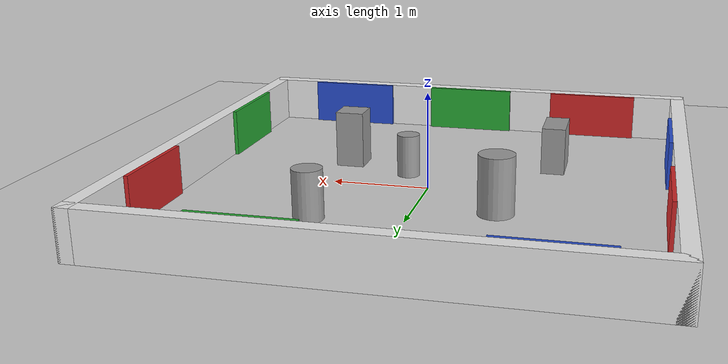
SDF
<?xml version="1.0" ?>
<!-- 자동 생성: generate_world.py — 흰벽 5x5m 방 + RGB 단색 패널 9개 + 무채색 장애물 -->
<sdf version="1.6">
  <world name="color_room">
    <include><uri>model://sun</uri></include>
    <include><uri>model://ground_plane</uri></include>
    <scene>
      <ambient>0.6 0.6 0.6 1</ambient>
      <background>0.8 0.8 0.8 1</background>
      <shadows>false</shadows>
    </scene>
    <physics type="ode">
      <real_time_update_rate>1000</real_time_update_rate>
      <max_step_size>0.001</max_step_size>
    </physics>

    <model name="wall_bottom">
      <static>true</static>
      <pose>0.0 -2.5 0.250 0 0 0</pose>
      <link name="link">
        <collision name="c"><geometry><box><size>5.15 0.15 0.5</size></box></geometry></collision>
        <visual name="v">
          <geometry><box><size>5.15 0.15 0.5</size></box></geometry>
          <material><script><uri>file://media/materials/scripts/gazebo.material</uri><name>Gazebo/White</name></script></material>
        </visual>
      </link>
    </model>

    <model name="wall_top">
      <static>true</static>
      <pose>0.0 2.5 0.250 0 0 0</pose>
      <link name="link">
        <collision name="c"><geometry><box><size>5.15 0.15 0.5</size></box></geometry></collision>
        <visual name="v">
          <geometry><box><size>5.15 0.15 0.5</size></box></geometry>
          <material><script><uri>file://media/materials/scripts/gazebo.material</uri><name>Gazebo/White</name></script></material>
        </visual>
      </link>
    </model>

    <model name="wall_left">
      <static>true</static>
      <pose>-2.5 0.0 0.250 0 0 0</pose>
      <link name="link">
        <collision name="c"><geometry><box><size>0.15 5.15 0.5</size></box></geometry></collision>
        <visual name="v">
          <geometry><box><size>0.15 5.15 0.5</size></box></geometry>
          <material><script><uri>file://media/materials/scripts/gazebo.material</uri><name>Gazebo/White</name></script></material>
        </visual>
      </link>
    </model>

    <model name="wall_right">
      <static>true</static>
      <pose>2.5 0.0 0.250 0 0 0</pose>
      <link name="link">
        <collision name="c"><geometry><box><size>0.15 5.15 0.5</size></box></geometry></collision>
        <visual name="v">
          <geometry><box><size>0.15 5.15 0.5</size></box></geometry>
          <material><script><uri>file://media/materials/scripts/gazebo.material</uri><name>Gazebo/White</name></script></material>
        </visual>
      </link>
    </model>

    <model name="p_red_b">
      <static>true</static>
      <pose>-1.500 -2.405 0.250 0 0 0</pose>
      <link name="link">
        <collision name="c"><geometry><box><size>1.0 0.04 0.5</size></box></geometry></collision>
        <visual name="v">
          <geometry><box><size>1.0 0.04 0.5</size></box></geometry>
          <material><script><uri>file://media/materials/scripts/gazebo.material</uri><name>Gazebo/Red</name></script></material>
        </visual>
      </link>
    </model>

    <model name="p_green_b">
      <static>true</static>
      <pose>0.000 -2.405 0.250 0 0 0</pose>
      <link name="link">
        <collision name="c"><geometry><box><size>1.0 0.04 0.5</size></box></geometry></collision>
        <visual name="v">
          <geometry><box><size>1.0 0.04 0.5</size></box></geometry>
          <material><script><uri>file://media/materials/scripts/gazebo.material</uri><name>Gazebo/Green</name></script></material>
        </visual>
      </link>
    </model>

    <model name="p_blue_b">
      <static>true</static>
      <pose>1.500 -2.405 0.250 0 0 0</pose>
      <link name="link">
        <collision name="c"><geometry><box><size>1.0 0.04 0.5</size></box></geometry></collision>
        <visual name="v">
          <geometry><box><size>1.0 0.04 0.5</size></box></geometry>
          <material><script><uri>file://media/materials/scripts/gazebo.material</uri><name>Gazebo/Blue</name></script></material>
        </visual>
      </link>
    </model>

    <model name="p_green_r">
      <static>true</static>
      <pose>2.405 -1.200 0.250 0 0 0</pose>
      <link name="link">
        <collision name="c"><geometry><box><size>0.04 1.0 0.5</size></box></geometry></collision>
        <visual name="v">
          <geometry><box><size>0.04 1.0 0.5</size></box></geometry>
          <material><script><uri>file://media/materials/scripts/gazebo.material</uri><name>Gazebo/Green</name></script></material>
        </visual>
      </link>
    </model>

    <model name="p_red_r">
      <static>true</static>
      <pose>2.405 1.200 0.250 0 0 0</pose>
      <link name="link">
        <collision name="c"><geometry><box><size>0.04 1.0 0.5</size></box></geometry></collision>
        <visual name="v">
          <geometry><box><size>0.04 1.0 0.5</size></box></geometry>
          <material><script><uri>file://media/materials/scripts/gazebo.material</uri><name>Gazebo/Red</name></script></material>
        </visual>
      </link>
    </model>

    <model name="p_blue_t">
      <static>true</static>
      <pose>-1.500 2.405 0.250 0 0 0</pose>
      <link name="link">
        <collision name="c"><geometry><box><size>1.0 0.04 0.5</size></box></geometry></collision>
        <visual name="v">
          <geometry><box><size>1.0 0.04 0.5</size></box></geometry>
          <material><script><uri>file://media/materials/scripts/gazebo.material</uri><name>Gazebo/Blue</name></script></material>
        </visual>
      </link>
    </model>

    <model name="p_green_t">
      <static>true</static>
      <pose>1.000 2.405 0.250 0 0 0</pose>
      <link name="link">
        <collision name="c"><geometry><box><size>1.0 0.04 0.5</size></box></geometry></collision>
        <visual name="v">
          <geometry><box><size>1.0 0.04 0.5</size></box></geometry>
          <material><script><uri>file://media/materials/scripts/gazebo.material</uri><name>Gazebo/Green</name></script></material>
        </visual>
      </link>
    </model>

    <model name="p_blue_l">
      <static>true</static>
      <pose>-2.405 -1.000 0.250 0 0 0</pose>
      <link name="link">
        <collision name="c"><geometry><box><size>0.04 1.0 0.5</size></box></geometry></collision>
        <visual name="v">
          <geometry><box><size>0.04 1.0 0.5</size></box></geometry>
          <material><script><uri>file://media/materials/scripts/gazebo.material</uri><name>Gazebo/Blue</name></script></material>
        </visual>
      </link>
    </model>

    <model name="p_red_l">
      <static>true</static>
      <pose>-2.405 0.800 0.250 0 0 0</pose>
      <link name="link">
        <collision name="c"><geometry><box><size>0.04 1.0 0.5</size></box></geometry></collision>
        <visual name="v">
          <geometry><box><size>0.04 1.0 0.5</size></box></geometry>
          <material><script><uri>file://media/materials/scripts/gazebo.material</uri><name>Gazebo/Red</name></script></material>
        </visual>
      </link>
    </model>

    <model name="obs_cyl_a">
      <static>true</static>
      <pose>-0.8 0.6 0.300 0 0 0</pose>
      <link name="link">
        <collision name="c"><geometry><cylinder><radius>0.18</radius><length>0.6</length></cylinder></geometry></collision>
        <visual name="v">
          <geometry><cylinder><radius>0.18</radius><length>0.6</length></cylinder></geometry>
          <material><script><uri>file://media/materials/scripts/gazebo.material</uri><name>Gazebo/Grey</name></script></material>
        </visual>
      </link>
    </model>

    <model name="obs_box_a">
      <static>true</static>
      <pose>1.0 -0.7 0.300 0 0 0</pose>
      <link name="link">
        <collision name="c"><geometry><box><size>0.3 0.3 0.6</size></box></geometry></collision>
        <visual name="v">
          <geometry><box><size>0.3 0.3 0.6</size></box></geometry>
          <material><script><uri>file://media/materials/scripts/gazebo.material</uri><name>Gazebo/Grey</name></script></material>
        </visual>
      </link>
    </model>

    <model name="obs_cyl_b">
      <static>true</static>
      <pose>0.9 1.1 0.250 0 0 0</pose>
      <link name="link">
        <collision name="c"><geometry><cylinder><radius>0.15</radius><length>0.5</length></cylinder></geometry></collision>
        <visual name="v">
          <geometry><cylinder><radius>0.15</radius><length>0.5</length></cylinder></geometry>
          <material><script><uri>file://media/materials/scripts/gazebo.material</uri><name>Gazebo/Grey</name></script></material>
        </visual>
      </link>
    </model>

    <model name="obs_box_b">
      <static>true</static>
      <pose>-1.2 -1.0 0.250 0 0 0</pose>
      <link name="link">
        <collision name="c"><geometry><box><size>0.25 0.5 0.5</size></box></geometry></collision>
        <visual name="v">
          <geometry><box><size>0.25 0.5 0.5</size></box></geometry>
          <material><script><uri>file://media/materials/scripts/gazebo.material</uri><name>Gazebo/Grey</name></script></material>
        </visual>
      </link>
    </model>

    <model name="obs_cyl_c">
      <static>true</static>
      <pose>0.3 -0.4 0.225 0 0 0</pose>
      <link name="link">
        <collision name="c"><geometry><cylinder><radius>0.12</radius><length>0.45</length></cylinder></geometry></collision>
        <visual name="v">
          <geometry><cylinder><radius>0.12</radius><length>0.45</length></cylinder></geometry>
          <material><script><uri>file://media/materials/scripts/gazebo.material</uri><name>Gazebo/Grey</name></script></material>
        </visual>
      </link>
    </model>

  </world>
</sdf>
